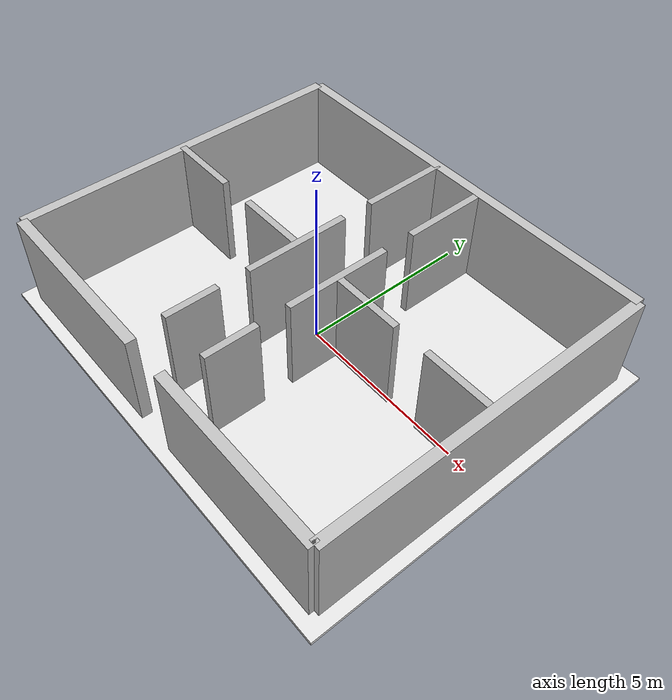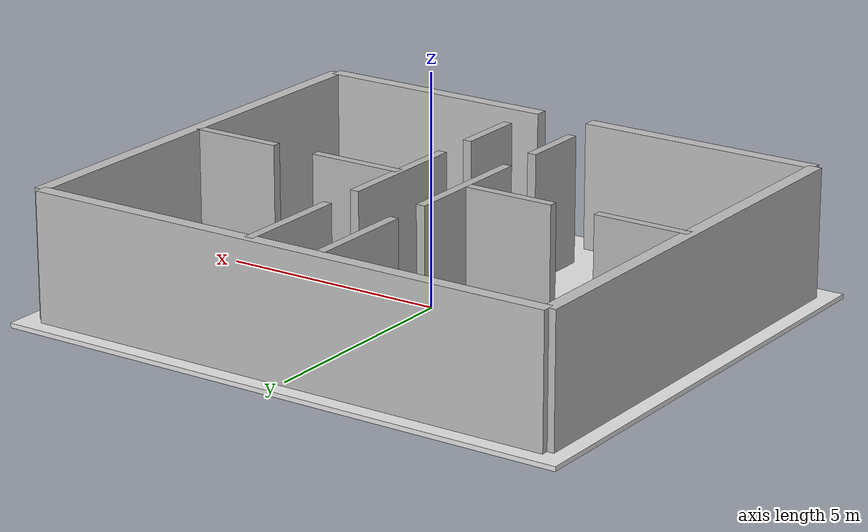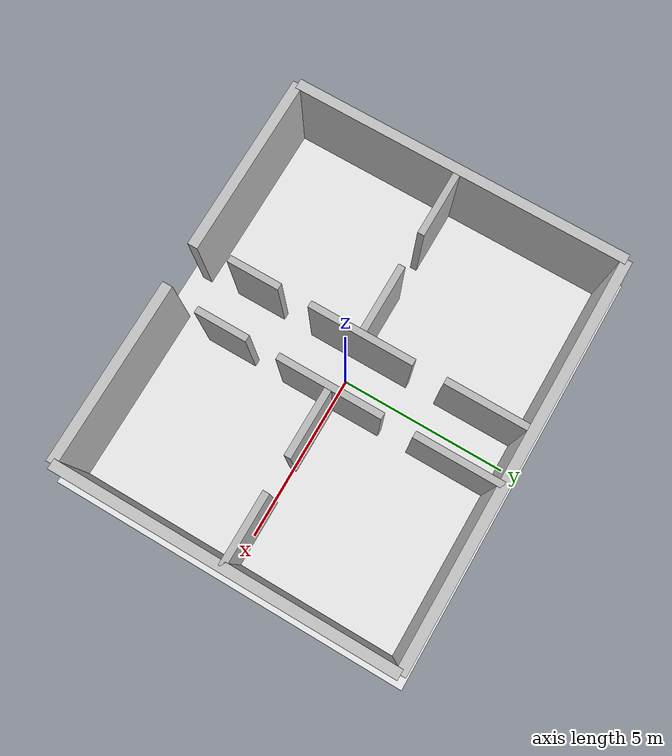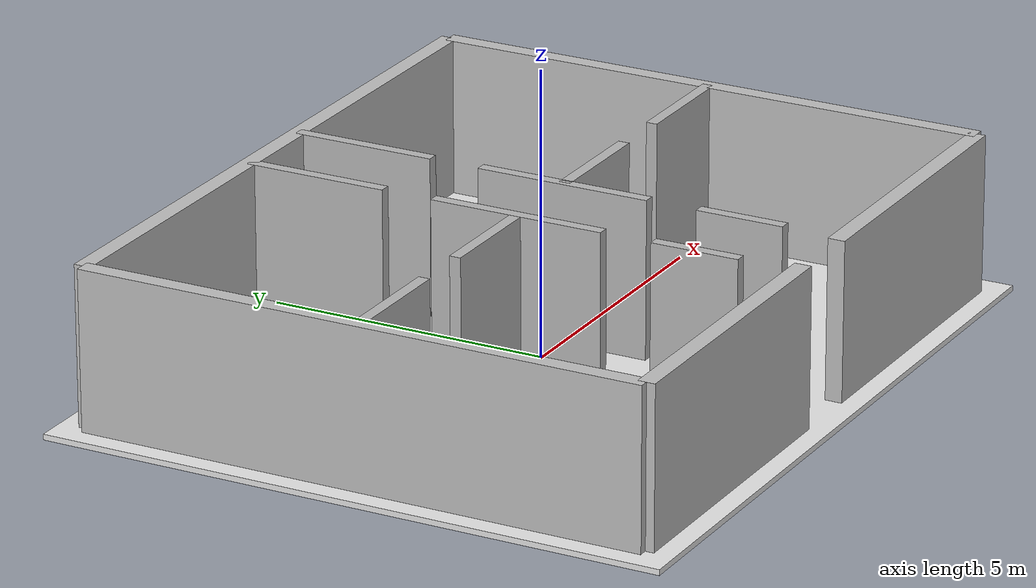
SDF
<?xml version="1.0" ?>
<sdf version="1.8">
  <world name="normal_house">
    <gravity>0 0 -9.81</gravity>
    <scene>
      <ambient>0.45 0.45 0.45 1</ambient>
      <background>0.75 0.85 0.95 1</background>
      <shadows>true</shadows>
    </scene>

    <gui fullscreen="0">
      <camera name="user_camera">
        <pose>0 -18 10 0.0 0.7 1.57</pose>
        <view_controller>orbit</view_controller>
      </camera>
    </gui>

    <light name="house_dir_light" type="directional">
      <pose>0 0 12 0 0 0</pose>
      <cast_shadows>true</cast_shadows>
      <diffuse>1 1 1 1</diffuse>
      <specular>0.2 0.2 0.2 1</specular>
      <attenuation>
        <range>120</range>
        <constant>1</constant>
        <linear>0</linear>
        <quadratic>0</quadratic>
      </attenuation>
      <direction>-0.4 0.2 -1</direction>
    </light>

    <physics name="default_physics" type="ode">
      <max_step_size>0.001</max_step_size>
      <real_time_factor>1</real_time_factor>
      <real_time_update_rate>1000</real_time_update_rate>
    </physics>

    <!-- Floor slab (slightly larger than house footprint) -->
    <model name="floor">
      <static>true</static>
      <pose>0 0 -0.05 0 0 0</pose>
      <link name="link">
        <collision name="col">
          <geometry><box><size>13 11 0.1</size></box></geometry>
        </collision>
        <visual name="vis">
          <geometry><box><size>13 11 0.1</size></box></geometry>
          <material>
            <ambient>0.9 0.9 0.9 1</ambient>
            <diffuse>0.9 0.9 0.9 1</diffuse>
          </material>
        </visual>
      </link>
    </model>

    <!-- Exterior walls: inner footprint 12 x 10 m, thickness 0.3 m, height 2.8 m -->
    <!-- West wall -->
    <model name="wall_west">
      <static>true</static>
      <pose>-6 0 1.4 0 0 0</pose>
      <link name="link">
        <collision name="col"><geometry><box><size>0.3 10 2.8</size></box></geometry></collision>
        <visual name="vis"><geometry><box><size>0.3 10 2.8</size></box></geometry>
          <material><diffuse>0.75 0.75 0.75 1</diffuse></material>
        </visual>
      </link>
    </model>

    <!-- East wall -->
    <model name="wall_east">
      <static>true</static>
      <pose>6 0 1.4 0 0 0</pose>
      <link name="link">
        <collision name="col"><geometry><box><size>0.3 10 2.8</size></box></geometry></collision>
        <visual name="vis"><geometry><box><size>0.3 10 2.8</size></box></geometry>
          <material><diffuse>0.75 0.75 0.75 1</diffuse></material>
        </visual>
      </link>
    </model>

    <!-- North wall -->
    <model name="wall_north">
      <static>true</static>
      <pose>0 5 1.4 0 0 0</pose>
      <link name="link">
        <collision name="col"><geometry><box><size>12 0.3 2.8</size></box></geometry></collision>
        <visual name="vis"><geometry><box><size>12 0.3 2.8</size></box></geometry>
          <material><diffuse>0.75 0.75 0.75 1</diffuse></material>
        </visual>
      </link>
    </model>

    <!-- South wall with front door opening (1.2 m wide) -->
    <model name="wall_south_left">
      <static>true</static>
      <pose>-3.3 -5 1.4 0 0 0</pose>
      <link name="link">
        <collision name="col"><geometry><box><size>5.4 0.3 2.8</size></box></geometry></collision>
        <visual name="vis"><geometry><box><size>5.4 0.3 2.8</size></box></geometry>
          <material><diffuse>0.75 0.75 0.75 1</diffuse></material>
        </visual>
      </link>
    </model>
    <model name="wall_south_right">
      <static>true</static>
      <pose>3.3 -5 1.4 0 0 0</pose>
      <link name="link">
        <collision name="col"><geometry><box><size>5.4 0.3 2.8</size></box></geometry></collision>
        <visual name="vis"><geometry><box><size>5.4 0.3 2.8</size></box></geometry>
          <material><diffuse>0.75 0.75 0.75 1</diffuse></material>
        </visual>
      </link>
    </model>

    <!-- Central corridor: 1.6 m wide from y=-4 to y=5 formed by two long walls (0.2 m thick) with door gaps -->
 <!-- West side of corridor (x = -0.8) -->
<model name="corridor_west_segments">
  <static>true</static>
  <pose>-0.8 0 1.4 0 0 0</pose> <!-- sửa y từ 0.5 -> 0 -->
  <link name="link">
    <collision name="col_s1"><geometry><box><size>0.2 1.55 2.8</size></box></geometry><pose>0 -3.225 0 0 0 0</pose></collision>
    <visual name="vis_s1"><geometry><box><size>0.2 1.55 2.8</size></box></geometry><pose>0 -3.225 0 0 0 0</pose></visual>

    <collision name="col_s2"><geometry><box><size>0.2 3.1 2.8</size></box></geometry><pose>0 0 0 0 0 0</pose></collision>
    <visual name="vis_s2"><geometry><box><size>0.2 3.1 2.8</size></box></geometry><pose>0 0 0 0 0 0</pose></visual>

    <collision name="col_s3"><geometry><box><size>0.2 2.55 2.8</size></box></geometry><pose>0 3.725 0 0 0 0</pose></collision>
    <visual name="vis_s3"><geometry><box><size>0.2 2.55 2.8</size></box></geometry><pose>0 3.725 0 0 0 0</pose></visual>
  </link>
</model>

<!-- East side of corridor (x = +0.8) -->
<model name="corridor_east_segments">
  <static>true</static>
  <pose>0.8 0 1.4 0 0 0</pose> <!-- sửa y từ 0.5 -> 0 -->
  <link name="link">
    <collision name="col_s1"><geometry><box><size>0.2 1.55 2.8</size></box></geometry><pose>0 -3.225 0 0 0 0</pose></collision>
    <visual name="vis_s1"><geometry><box><size>0.2 1.55 2.8</size></box></geometry><pose>0 -3.225 0 0 0 0</pose></visual>

    <collision name="col_s2"><geometry><box><size>0.2 3.1 2.8</size></box></geometry><pose>0 0 0 0 0 0</pose></collision>
    <visual name="vis_s2"><geometry><box><size>0.2 3.1 2.8</size></box></geometry><pose>0 0 0 0 0 0</pose></visual>

    <collision name="col_s3"><geometry><box><size>0.2 2.55 2.8</size></box></geometry><pose>0 3.725 0 0 0 0</pose></collision>
    <visual name="vis_s3"><geometry><box><size>0.2 2.55 2.8</size></box></geometry><pose>0 3.725 0 0 0 0</pose></visual>
  </link>
</model>

    <!-- Horizontal partitions at y=0 to form front/back rooms on each side of the corridor -->
    <model name="partition_west_y0">
      <static>true</static>
      <pose>-3.4 0 1.4 0 0 0</pose>
      <link name="link">
        <!-- Split into two segments with 1.0 m central doorway -->
        <collision name="col_left"><geometry><box><size>2.1 0.2 2.8</size></box></geometry><pose>-1.55 0 0 0 0 0</pose></collision>
        <visual name="vis_left"><geometry><box><size>2.1 0.2 2.8</size></box></geometry><pose>-1.55 0 0 0 0 0</pose></visual>
        <collision name="col_right"><geometry><box><size>2.1 0.2 2.8</size></box></geometry><pose>1.55 0 0 0 0 0</pose></collision>
        <visual name="vis_right"><geometry><box><size>2.1 0.2 2.8</size></box></geometry><pose>1.55 0 0 0 0 0</pose></visual>
      </link>
    </model>

    <model name="partition_east_y0">
      <static>true</static>
      <pose>3.4 0 1.4 0 0 0</pose>
      <link name="link">
        <!-- Split into two segments with 1.0 m central doorway -->
        <collision name="col_left"><geometry><box><size>2.1 0.2 2.8</size></box></geometry><pose>-1.55 0 0 0 0 0</pose></collision>
        <visual name="vis_left"><geometry><box><size>2.1 0.2 2.8</size></box></geometry><pose>-1.55 0 0 0 0 0</pose></visual>
        <collision name="col_right"><geometry><box><size>2.1 0.2 2.8</size></box></geometry><pose>1.55 0 0 0 0 0</pose></collision>
        <visual name="vis_right"><geometry><box><size>2.1 0.2 2.8</size></box></geometry><pose>1.55 0 0 0 0 0</pose></visual>
      </link>
    </model>

  </world>
</sdf>
